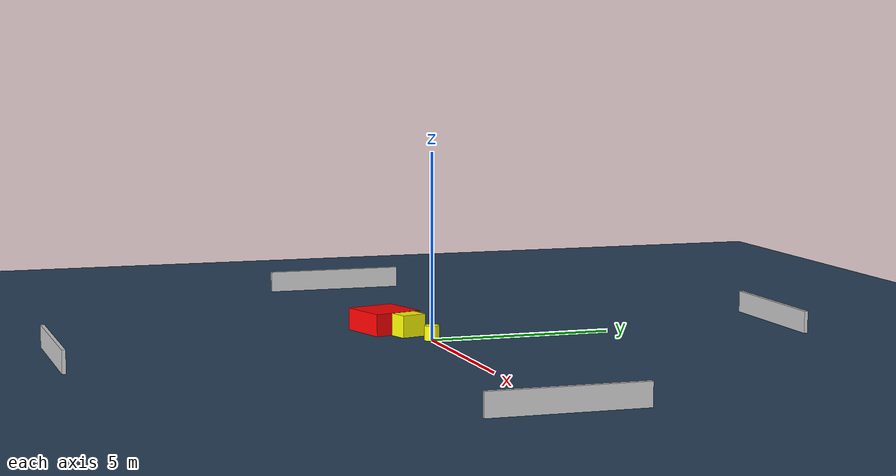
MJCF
<?xml version="1.0" ?>
<mujoco model="generated_environment">
  <option timestep="0.01" integrator="RK4" cone="elliptic"/>
  <default>
    <geom density="1"/>
  </default>
  <asset>
    <texture builtin="gradient" height="3072" name="skybox" rgb1="0.3 0.5 0.7" rgb2="0 0 0" type="skybox" width="512"/>
    <texture builtin="checker" height="300" name="groundplane" rgb1="0.2 0.3 0.4" rgb2="0.1 0.2 0.3" type="2d" width="300"/>
    <material name="groundplane" reflectance="0.2" texrepeat="5 5" texture="groundplane"/>
  </asset>
  <worldbody>
    <light dir="0 0 -1" directional="true" pos="0 0 1.5"/>
    <geom condim="3" friction="0.5 0.005 0.001" material="groundplane" name="floor" pos="0 0 0" size="0 0 0.05" type="plane"/>
    <body name="walls">
      <geom name="wall_1" condim="4" pos="-10.0 0.0 0.3" rgba="0.800000011920929 0.800000011920929 0.800000011920929 1.0" size="0.05 2.0 0.3" type="box"/>
      <geom name="wall_2" condim="4" pos="10.0 0.0 0.3" rgba="0.800000011920929 0.800000011920929 0.800000011920929 1.0" size="0.05 2.0 0.3" type="box"/>
      <geom name="wall_3" condim="4" pos="0.0 -10.0 0.3" rgba="0.800000011920929 0.800000011920929 0.800000011920929 1.0" size="2.0 0.05 0.3" type="box"/>
      <geom name="wall_4" condim="4" pos="0.0 10.0 0.3" rgba="0.800000011920929 0.800000011920929 0.800000011920929 1.0" size="2.0 0.05 0.3" type="box"/>
    </body>
    <body name="robot">
      <joint name="joint_x" type="slide" pos="0 0 0" axis="1 0 0"/>
      <joint name="joint_y" type="slide" pos="0 0 0" axis="0 1 0"/>
      <geom name="robot" type="cylinder" pos="0.0 0.0 0.2" size="0.2 0.2 0.0" mass="5.0" friction="1.0 0.005 0.0001" condim="4" rgba="1.0 1.0 0.0 1.0"/>
    </body>
    <body name="obstacle_1_movable">
      <geom name="obstacle_1_movable" condim="4" pos="-0.8841341697207888 -0.3709347790755657 0.3" euler="0 0 196.0667761050984" friction="0.0 0.005 0.001" rgba="1.0 1.0 0.0 1.0" size="0.27191598053024785 0.351034886262378 0.3" type="box" mass="0.1"/>
      <joint type="free"/>
    </body>
    <body name="obstacle_2_static">
      <geom name="obstacle_2_static" condim="4" pos="-1.830013203517121 -0.786840326072085 0.3" euler="0 0 16.040579223301567" friction="0.0 0.005 0.001" rgba="1.0 0.0 0.0 1.0" size="0.7210646968129535 0.6777050670672502 0.3" type="box"/>
    </body>
  </worldbody>
  <actuator>
    <motor name="actuator_x" joint="joint_x" gear="1" ctrlrange="-1 1"/>
    <motor name="actuator_y" joint="joint_y" gear="1" ctrlrange="-1 1"/>
  </actuator>
</mujoco>
